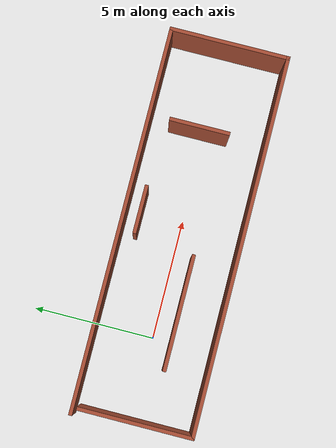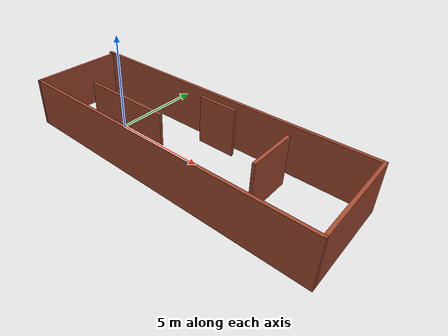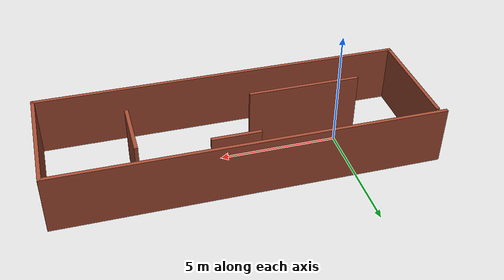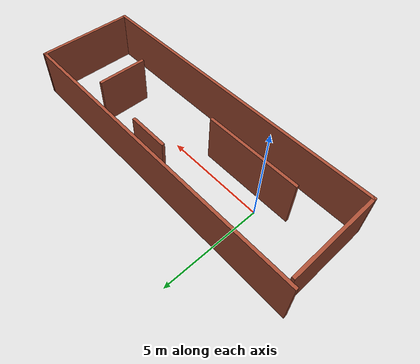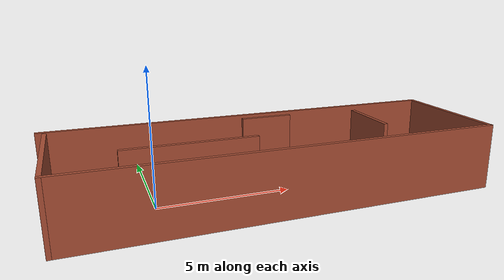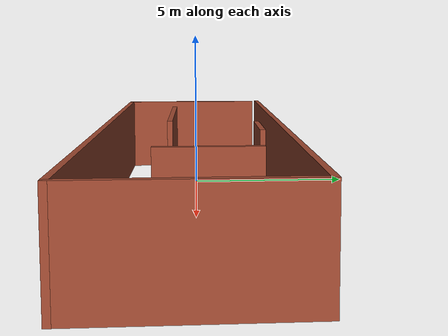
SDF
<?xml version='1.0'?>
<sdf version='1.7'>
  <model name='map'>
    <pose>4.27618 -0.049407 0 0 -0 0</pose>
    <link name='Wall_16'>
      <collision name='Wall_16_Collision'>
        <geometry>
          <box>
            <size>16 0.15 2.5</size>
          </box>
        </geometry>
        <pose>0 0 1.25 0 -0 0</pose>
      </collision>
      <visual name='Wall_16_Visual'>
        <pose>0 0 1.25 0 -0 0</pose>
        <geometry>
          <box>
            <size>16 0.15 2.5</size>
          </box>
        </geometry>
        <material>
          <script>
            <uri>file://media/materials/scripts/gazebo.material</uri>
            <name>Gazebo/Bricks</name>
          </script>
          <ambient>1 1 1 1</ambient>
        </material>
        <meta>
          <layer>0</layer>
        </meta>
      </visual>
      <pose>-0 2.425 0 0 -0 0</pose>
    </link>
    <link name='Wall_17'>
      <collision name='Wall_17_Collision'>
        <geometry>
          <box>
            <size>5 0.15 2.5</size>
          </box>
        </geometry>
        <pose>0 0 1.25 0 -0 0</pose>
      </collision>
      <visual name='Wall_17_Visual'>
        <pose>0 0 1.25 0 -0 0</pose>
        <geometry>
          <box>
            <size>5 0.15 2.5</size>
          </box>
        </geometry>
        <material>
          <script>
            <uri>file://media/materials/scripts/gazebo.material</uri>
            <name>Gazebo/Bricks</name>
          </script>
          <ambient>1 1 1 1</ambient>
        </material>
        <meta>
          <layer>0</layer>
        </meta>
      </visual>
      <pose>7.925 -0 0 0 -0 -1.5708</pose>
    </link>
    <link name='Wall_18'>
      <collision name='Wall_18_Collision'>
        <geometry>
          <box>
            <size>15.75 0.15 2.5</size>
          </box>
        </geometry>
        <pose>0 0 1.25 0 -0 0</pose>
      </collision>
      <visual name='Wall_18_Visual'>
        <pose>0 0 1.25 0 -0 0</pose>
        <geometry>
          <box>
            <size>15.75 0.15 2.5</size>
          </box>
        </geometry>
        <material>
          <script>
            <uri>file://media/materials/scripts/gazebo.material</uri>
            <name>Gazebo/Bricks</name>
          </script>
          <ambient>1 1 1 1</ambient>
        </material>
        <meta>
          <layer>0</layer>
        </meta>
      </visual>
      <pose>0.125 -2.425 0 0 -0 3.14159</pose>
    </link>
    <link name='Wall_20'>
      <collision name='Wall_20_Collision'>
        <geometry>
          <box>
            <size>4.75 0.15 2.5</size>
          </box>
        </geometry>
        <pose>0 0 1.25 0 -0 0</pose>
      </collision>
      <visual name='Wall_20_Visual'>
        <pose>0 0 1.25 0 -0 0</pose>
        <geometry>
          <box>
            <size>4.75 0.15 2.5</size>
          </box>
        </geometry>
        <material>
          <script>
            <uri>file://media/materials/scripts/gazebo.material</uri>
            <name>Gazebo/Bricks</name>
          </script>
          <ambient>1 1 1 1</ambient>
        </material>
        <meta>
          <layer>0</layer>
        </meta>
      </visual>
      <pose>-7.675 -0.125 0 0 -0 1.5708</pose>
    </link>
    <link name='Wall_22'>
      <collision name='Wall_22_Collision'>
        <geometry>
          <box>
            <size>2.5 0.15 2.5</size>
          </box>
        </geometry>
        <pose>0 0 1.25 0 -0 0</pose>
      </collision>
      <visual name='Wall_22_Visual'>
        <pose>0 0 1.25 0 -0 0</pose>
        <geometry>
          <box>
            <size>2.5 0.15 2.5</size>
          </box>
        </geometry>
        <material>
          <script>
            <uri>file://media/materials/scripts/gazebo.material</uri>
            <name>Gazebo/Bricks</name>
          </script>
          <ambient>1 1 1 1</ambient>
        </material>
        <meta>
          <layer>0</layer>
        </meta>
      </visual>
      <pose>4.345 0.34 0 0 -0 -1.5708</pose>
    </link>
    <link name='Wall_24'>
      <collision name='Wall_24_Collision'>
        <geometry>
          <box>
            <size>4.75 0.15 2.5</size>
          </box>
        </geometry>
        <pose>0 0 1.25 0 -0 0</pose>
      </collision>
      <visual name='Wall_24_Visual'>
        <pose>0 0 1.25 0 -0 0</pose>
        <geometry>
          <box>
            <size>4.75 0.15 2.5</size>
          </box>
        </geometry>
        <material>
          <script>
            <uri>file://media/materials/scripts/gazebo.material</uri>
            <name>Gazebo/Bricks</name>
          </script>
          <ambient>1 1 1 1</ambient>
        </material>
        <meta>
          <layer>0</layer>
        </meta>
      </visual>
      <pose>-3.075 -0.705 0 0 -0 0</pose>
    </link>
    <link name='Wall_27'>
      <collision name='Wall_27_Collision'>
        <geometry>
          <box>
            <size>2 0.15 2.5</size>
          </box>
        </geometry>
        <pose>0 0 1.25 0 -0 0</pose>
      </collision>
      <visual name='Wall_27_Visual'>
        <pose>0 0 1.25 0 -0 0</pose>
        <geometry>
          <box>
            <size>2 0.15 2.5</size>
          </box>
        </geometry>
        <material>
          <script>
            <uri>file://media/materials/scripts/gazebo.material</uri>
            <name>Gazebo/Bricks</name>
          </script>
          <ambient>1 1 1 1</ambient>
        </material>
        <meta>
          <layer>0</layer>
        </meta>
      </visual>
      <pose>0.52 1.795 0 0 -0 0</pose>
    </link>
    <static>1</static>
  </model>
</sdf>
